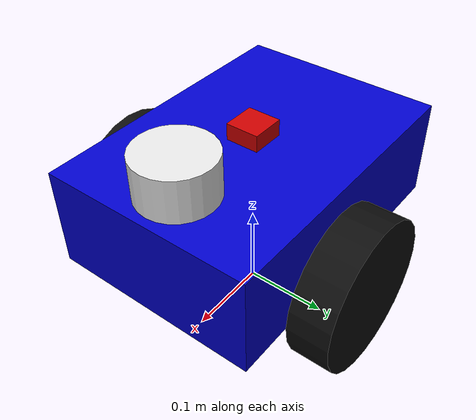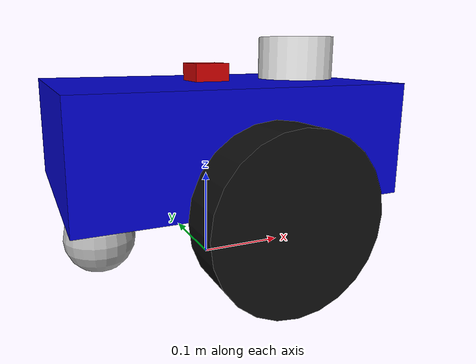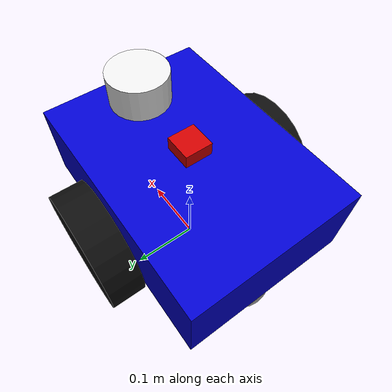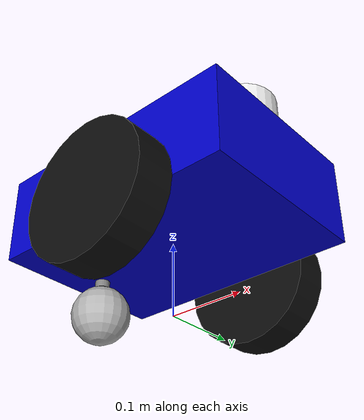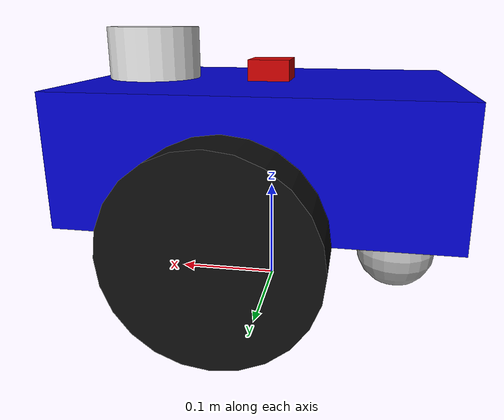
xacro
<?xml version="1.0"?>
<robot name="training_robot" xmlns:xacro="http://www.ros.org/wiki/xacro">

  <!-- ================= BASE FOOTPRINT (ground reference) ================= -->
  <link name="base_footprint"/>

  <joint name="base_footprint_joint" type="fixed">
    <parent link="base_footprint"/>
    <child  link="base_link"/>
    <!-- Raise base_link so chassis bottom sits at wheel_radius above ground -->
    <!-- chassis centre = wheel_radius + base_height/2 = 0.09 + 0.06 = 0.15 -->
    <origin xyz="0 0 0.15" rpy="0 0 0"/>
  </joint>

  <!-- ================= BASE LINK ================= -->
  <link name="base_link">
    <visual>
      <geometry>
        <box size="0.35 0.25 0.12"/>
      </geometry>
      <origin xyz="0 0 0" rpy="0 0 0"/>
      <material name="blue">
        <color rgba="0 0 0.8 1"/>
      </material>
    </visual>

    <collision>
      <geometry>
        <box size="0.35 0.25 0.12"/>
      </geometry>
      <origin xyz="0 0 0" rpy="0 0 0"/>
    </collision>

    <inertial>
      <mass value="2.2"/>
      <origin xyz="0 0 0" rpy="0 0 0"/>
      <!-- Solid box inertia: m=2.2, l=0.35, w=0.25, h=0.12 -->
      <inertia ixx="0.0143" ixy="0" ixz="0"
               iyy="0.0292" iyz="0"
               izz="0.0381"/>
    </inertial>
  </link>

  <!-- ================= LEFT WHEEL ================= -->
  <link name="left_wheel">
    <visual>
      <geometry>
        <cylinder radius="0.09" length="0.05"/>
      </geometry>
      <!-- rpy rotates cylinder axis from Z to Y (wheel axle direction) -->
      <origin xyz="0 0 0" rpy="1.5707 0 0"/>
      <material name="black">
        <color rgba="0.05 0.05 0.05 1"/>
      </material>
    </visual>

    <collision>
      <geometry>
        <cylinder radius="0.09" length="0.05"/>
      </geometry>
      <origin xyz="0 0 0" rpy="1.5707 0 0"/>
    </collision>

    <inertial>
      <mass value="0.35"/>
      <origin xyz="0 0 0" rpy="0 0 0"/>
      <!-- Solid cylinder: Ixx=Iyy=(m/12)*(3r²+h²), Izz=(m/2)*r² -->
      <inertia ixx="0.001429" ixy="0" ixz="0"
               iyy="0.001429" iyz="0"
               izz="0.001418"/>
    </inertial>
  </link>

  <joint name="left_wheel_joint" type="continuous">
    <parent link="base_link"/>
    <child  link="left_wheel"/>
    <origin xyz="0.02 0.15 -0.06" rpy="0 0 0"/>
    <axis xyz="0 1 0"/>
  </joint>

  <!-- ================= RIGHT WHEEL ================= -->
  <link name="right_wheel">
    <visual>
      <geometry>
        <cylinder radius="0.09" length="0.05"/>
      </geometry>
      <origin xyz="0 0 0" rpy="1.5707 0 0"/>
      <material name="black">
        <color rgba="0.05 0.05 0.05 1"/>
      </material>
    </visual>

    <collision>
      <geometry>
        <cylinder radius="0.09" length="0.05"/>
      </geometry>
      <origin xyz="0 0 0" rpy="1.5707 0 0"/>
    </collision>

    <inertial>
      <mass value="0.35"/>
      <origin xyz="0 0 0" rpy="0 0 0"/>
      <inertia ixx="0.001429" ixy="0" ixz="0"
               iyy="0.001429" iyz="0"
               izz="0.001418"/>
    </inertial>
  </link>

  <joint name="right_wheel_joint" type="continuous">
    <parent link="base_link"/>
    <child  link="right_wheel"/>
    <origin xyz="0.02 -0.15 -0.06" rpy="0 0 0"/>
    <axis xyz="0 1 0"/>
  </joint>

  <!-- ================= REAR CASTER STEM (mount connecting chassis to ball) ================= -->
  <link name="caster_stem">
    <visual>
      <geometry>
        <cylinder radius="0.01" length="0.01"/>
      </geometry>
      <origin xyz="0 0 0" rpy="0 0 0"/>
      <material name="grey">
        <color rgba="0.5 0.5 0.5 1"/>
      </material>
    </visual>
    <collision>
      <geometry>
        <cylinder radius="0.01" length="0.01"/>
      </geometry>
      <origin xyz="0 0 0" rpy="0 0 0"/>
    </collision>
    <inertial>
      <mass value="0.01"/>
      <origin xyz="0 0 0" rpy="0 0 0"/>
      <inertia ixx="0.000001" ixy="0" ixz="0"
               iyy="0.000001" iyz="0"
               izz="0.000001"/>
    </inertial>
  </link>

  <!-- Stem attaches to chassis bottom centre-rear -->
  <joint name="caster_stem_joint" type="fixed">
    <parent link="base_link"/>
    <child  link="caster_stem"/>
    <!--
      Chassis bottom = z = -0.06 relative to base_link.
      Stem hangs down from there, stem centre = -0.06 - 0.005 = -0.065
    -->
    <origin xyz="-0.13 0 -0.065" rpy="0 0 0"/>
  </joint>

  <!-- ================= REAR CASTER BALL ================= -->
  <link name="caster_wheel">
    <visual>
      <geometry>
        <sphere radius="0.04"/>
      </geometry>
      <origin xyz="0 0 0" rpy="0 0 0"/>
      <material name="grey">
        <color rgba="0.7 0.7 0.7 1"/>
      </material>
    </visual>

    <collision>
      <geometry>
        <sphere radius="0.04"/>
      </geometry>
      <origin xyz="0 0 0" rpy="0 0 0"/>
    </collision>

    <inertial>
      <mass value="0.15"/>
      <origin xyz="0 0 0" rpy="0 0 0"/>
      <!-- Solid sphere: I = (2/5)*m*r² -->
      <inertia ixx="0.000096" ixy="0" ixz="0"
               iyy="0.000096" iyz="0"
               izz="0.000096"/>
    </inertial>
  </link>

  <!-- Ball hangs at the bottom of the stem -->
  <joint name="caster_joint" type="fixed">
    <parent link="caster_stem"/>
    <child  link="caster_wheel"/>
    <!--
      Stem centre is at world z = 0.15 - 0.065 = 0.085
      Ball centre must be at world z = caster_radius = 0.04
      joint_z relative to stem = 0.04 - 0.085 = -0.045
    -->
    <origin xyz="0 0 -0.045" rpy="0 0 0"/>
  </joint>

  <!-- ================= IMU ================= -->
  <link name="imu_link">
    <visual>
      <geometry>
        <box size="0.04 0.04 0.02"/>
      </geometry>
      <origin xyz="0 0 0" rpy="0 0 0"/>
      <material name="red">
        <color rgba="0.8 0 0 1"/>
      </material>
    </visual>

    <collision>
      <geometry>
        <box size="0.04 0.04 0.02"/>
      </geometry>
      <origin xyz="0 0 0" rpy="0 0 0"/>
    </collision>

    <inertial>
      <mass value="0.01"/>
      <origin xyz="0 0 0" rpy="0 0 0"/>
      <inertia ixx="0.000001" ixy="0" ixz="0"
               iyy="0.000001" iyz="0"
               izz="0.000001"/>
    </inertial>
  </link>

  <joint name="imu_joint" type="fixed">
    <parent link="base_link"/>
    <child  link="imu_link"/>
    <!-- Mounted flat on top of chassis -->
    <origin xyz="0 0 0.07" rpy="0 0 0"/>
  </joint>

  <!-- ================= LIDAR ================= -->
  <link name="laser_link">
    <visual>
      <geometry>
        <cylinder radius="0.045" length="0.05"/>
      </geometry>
      <origin xyz="0 0 0" rpy="0 0 0"/>
      <material name="silver">
        <color rgba="0.9 0.9 0.9 1"/>
      </material>
    </visual>

    <collision>
      <geometry>
        <cylinder radius="0.045" length="0.05"/>
      </geometry>
      <origin xyz="0 0 0" rpy="0 0 0"/>
    </collision>

    <inertial>
      <mass value="0.2"/>
      <origin xyz="0 0 0" rpy="0 0 0"/>
      <inertia ixx="0.000117" ixy="0" ixz="0"
               iyy="0.000117" iyz="0"
               izz="0.000203"/>
    </inertial>
  </link>

  <joint name="laser_joint" type="fixed">
    <parent link="base_link"/>
    <child  link="laser_link"/>
    <!-- Mounted on top of chassis, centred fore-aft -->
    <origin xyz="0.12 0 0.085" rpy="0 0 0"/>
  </joint>

  <!-- ================================================================
       GAZEBO PLUGINS
       ================================================================ -->

  <!-- Differential drive — /cmd_vel in, /odom + TF out -->
  <gazebo>
    <plugin name="diff_drive_controller" filename="libgazebo_ros_diff_drive.so">
      <ros>
        <namespace>/</namespace>
      </ros>
      <left_joint>left_wheel_joint</left_joint>
      <right_joint>right_wheel_joint</right_joint>
      <!-- wheel_separation = distance between wheel centres = 0.15*2 = 0.30 -->
      <wheel_separation>0.30</wheel_separation>
      <!-- wheel_diameter = 2 * wheel_radius = 0.18 -->
      <wheel_diameter>0.18</wheel_diameter>
      <max_wheel_torque>20</max_wheel_torque>
      <max_wheel_acceleration>1.0</max_wheel_acceleration>
      <command_topic>cmd_vel</command_topic>
      <publish_odom>true</publish_odom>
      <publish_odom_tf>true</publish_odom_tf>
      <publish_wheel_tf>true</publish_wheel_tf>
      <odometry_topic>odom</odometry_topic>
      <odometry_frame>odom</odometry_frame>
      <robot_base_frame>base_link</robot_base_frame>
    </plugin>
  </gazebo>

  <!-- IMU — publishes to /imu -->
  <gazebo reference="imu_link">
    <sensor name="imu_sensor" type="imu">
      <always_on>true</always_on>
      <update_rate>50</update_rate>
      <visualize>true</visualize>
      <plugin filename="libgazebo_ros_imu_sensor.so" name="imu_plugin">
        <ros>
          <namespace>/</namespace>
          <remapping>~/out:=imu</remapping>
        </ros>
        <initial_orientation_as_reference>false</initial_orientation_as_reference>
      </plugin>
    </sensor>
  </gazebo>

  <!-- LIDAR — publishes to /scan -->
  <gazebo reference="laser_link">
    <sensor name="lidar_sensor" type="ray">
      <always_on>true</always_on>
      <visualize>true</visualize>
      <update_rate>10</update_rate>
      <ray>
        <scan>
          <horizontal>
            <samples>360</samples>
            <resolution>1</resolution>
            <min_angle>-3.14159</min_angle>
            <max_angle>3.14159</max_angle>
          </horizontal>
        </scan>
        <range>
          <min>0.12</min>
          <max>10.0</max>
          <resolution>0.01</resolution>
        </range>
        <noise>
          <type>gaussian</type>
          <mean>0.0</mean>
          <stddev>0.01</stddev>
        </noise>
      </ray>
      <plugin filename="libgazebo_ros_ray_sensor.so" name="lidar_plugin">
        <ros>
          <namespace>/</namespace>
          <remapping>~/out:=scan</remapping>
        </ros>
        <output_type>sensor_msgs/LaserScan</output_type>
        <!-- Must match the link name above -->
        <frame_name>laser_link</frame_name>
      </plugin>
    </sensor>
  </gazebo>

  <!-- Zero caster friction — lets it slide freely, no fighting the drive wheels -->
  <gazebo reference="caster_wheel">
    <material>Gazebo/Grey</material>
    <mu1>0.0</mu1>
    <mu2>0.0</mu2>
  </gazebo>

  <gazebo reference="caster_stem">
    <material>Gazebo/Grey</material>
    <mu1>0.0</mu1>
    <mu2>0.0</mu2>
  </gazebo>

  <!-- Gazebo colours -->
  <gazebo reference="base_link">  <material>Gazebo/Blue</material>   </gazebo>
  <gazebo reference="left_wheel"> <material>Gazebo/Black</material>  </gazebo>
  <gazebo reference="right_wheel"><material>Gazebo/Black</material>  </gazebo>
  <gazebo reference="imu_link">   <material>Gazebo/Red</material>    </gazebo>
  <gazebo reference="laser_link"> <material>Gazebo/Grey</material>   </gazebo>

</robot>
